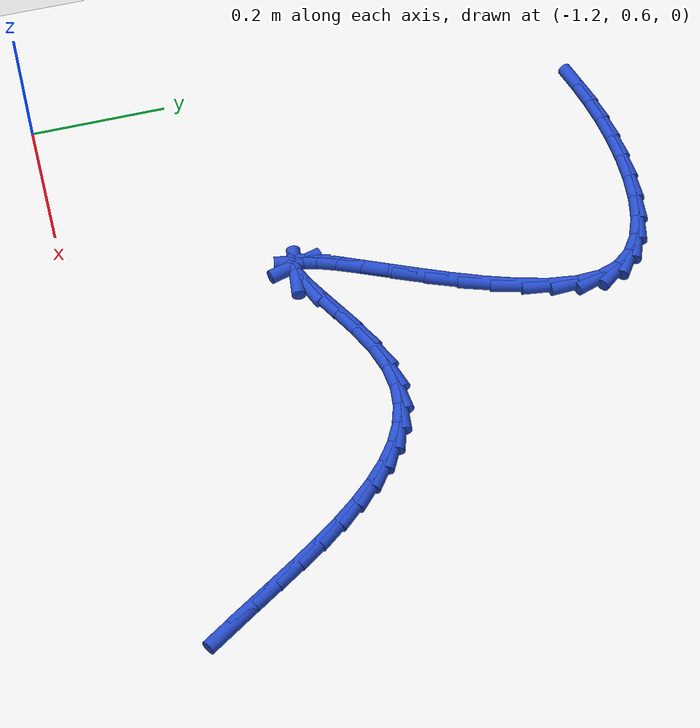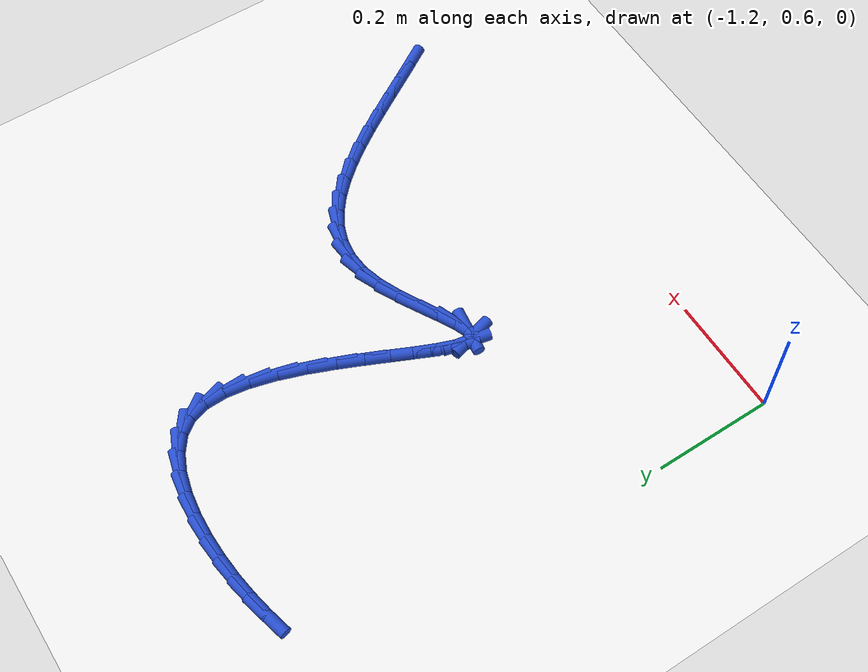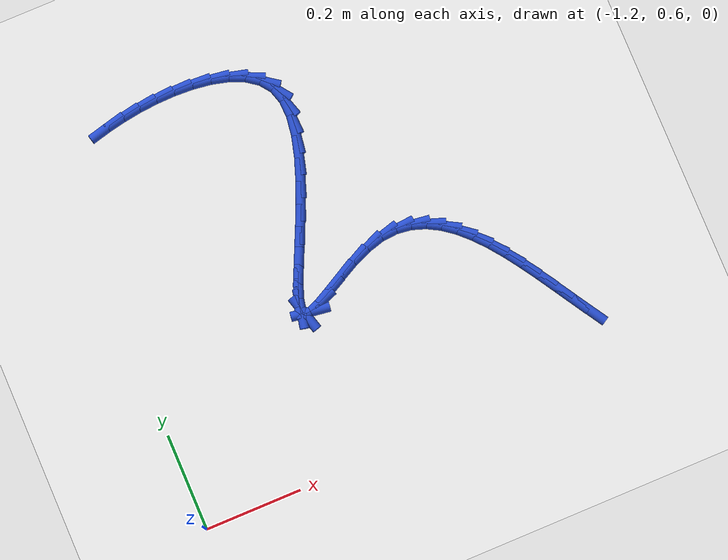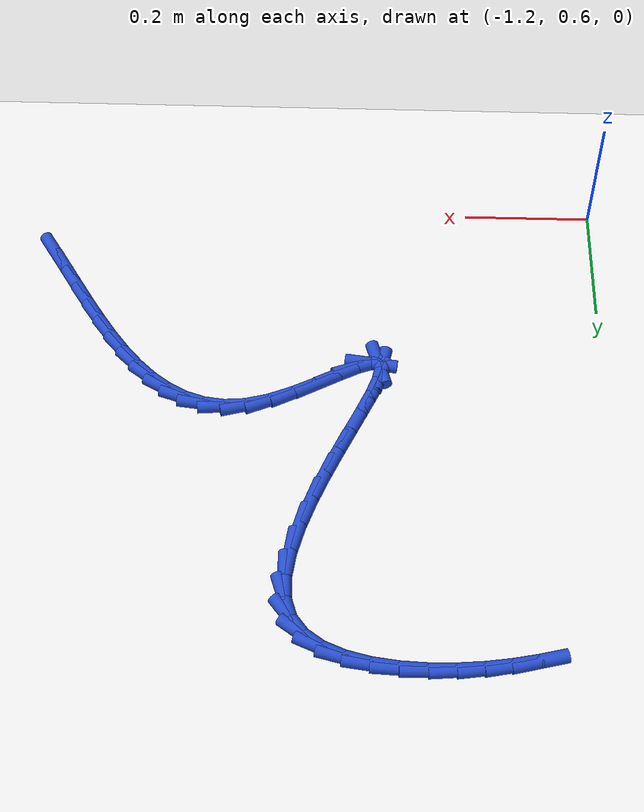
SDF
<sdf version="1.6">
 <world name="default">
  <model name="ground_plane">
   <static>1</static>
   <link name="link">
    <collision name="collision">
     <geometry><plane><normal>0 0 1</normal><size>100 100</size></plane></geometry>
     <surface><friction><ode><mu>100</mu><mu2>50</mu2></ode></friction></surface>
    </collision>
    <visual name="visual">
     <cast_shadows>0</cast_shadows>
     <geometry><plane><normal>0 0 1</normal><size>100 100</size></plane></geometry>
     <material>
      <script><uri>file://media/materials/scripts/gazebo.material</uri><name>Gazebo/WhiteGlow</name></script>
     </material>
    </visual>
   </link>
  </model>
  <model name="line">
   <link name="link_24">
    <pose>-0.3369132298268747 0.7074806537702544 0.01 0 1.57 -1.012945403709321</pose>
    <collision name="collision">
     <geometry><cylinder><radius>0.01</radius><length>0.08</length></cylinder></geometry>
    </collision>
    <visual name="visual">
     <material>
      <script><name>Gazebo/Blue</name><uri>file://media/materials/scripts/gazebo.material</uri></script>
     </material>
     <geometry><cylinder><radius>0.01</radius><length>0.08</length></cylinder></geometry>
    </visual>
   </link>
   <link name="link_25">
    <pose>-0.35791595093579703 0.7411410316948477 0.01 0 1.57 -1.020672715207863</pose>
    <collision name="collision">
     <geometry><cylinder><radius>0.01</radius><length>0.08</length></cylinder></geometry>
    </collision>
    <visual name="visual">
     <material>
      <script><name>Gazebo/Blue</name><uri>file://media/materials/scripts/gazebo.material</uri></script>
     </material>
     <geometry><cylinder><radius>0.01</radius><length>0.08</length></cylinder></geometry>
    </visual>
   </link>
   <link name="link_26">
    <pose>-0.3788608896694163 0.7752936196553027 0.01 0 1.57 -1.0159316533496228</pose>
    <collision name="collision">
     <geometry><cylinder><radius>0.01</radius><length>0.08</length></cylinder></geometry>
    </collision>
    <visual name="visual">
     <material>
      <script><name>Gazebo/Blue</name><uri>file://media/materials/scripts/gazebo.material</uri></script>
     </material>
     <geometry><cylinder><radius>0.01</radius><length>0.08</length></cylinder></geometry>
    </visual>
   </link>
   <link name="link_27">
    <pose>-0.39993773483118594 0.8092984812632591 0.01 0 1.57 -0.9985109300481555</pose>
    <collision name="collision">
     <geometry><cylinder><radius>0.01</radius><length>0.08</length></cylinder></geometry>
    </collision>
    <visual name="visual">
     <material>
      <script><name>Gazebo/Blue</name><uri>file://media/materials/scripts/gazebo.material</uri></script>
     </material>
     <geometry><cylinder><radius>0.01</radius><length>0.08</length></cylinder></geometry>
    </visual>
   </link>
   <link name="link_28">
    <pose>-0.42133617522455946 0.8425156801303565 0.01 0 1.57 -0.9673484333405514</pose>
    <collision name="collision">
     <geometry><cylinder><radius>0.01</radius><length>0.08</length></cylinder></geometry>
    </collision>
    <visual name="visual">
     <material>
      <script><name>Gazebo/Blue</name><uri>file://media/materials/scripts/gazebo.material</uri></script>
     </material>
     <geometry><cylinder><radius>0.01</radius><length>0.08</length></cylinder></geometry>
    </visual>
   </link>
   <link name="link_29">
    <pose>-0.4432458996529901 0.8743052798682337 0.01 0 1.57 -0.9204583813876139</pose>
    <collision name="collision">
     <geometry><cylinder><radius>0.01</radius><length>0.08</length></cylinder></geometry>
    </collision>
    <visual name="visual">
     <material>
      <script><name>Gazebo/Blue</name><uri>file://media/materials/scripts/gazebo.material</uri></script>
     </material>
     <geometry><cylinder><radius>0.01</radius><length>0.08</length></cylinder></geometry>
    </visual>
   </link>
   <link name="link_30">
    <pose>-0.4658565969199314 0.9040273440885304 0.01 0 1.57 -0.8548333704648474</pose>
    <collision name="collision">
     <geometry><cylinder><radius>0.01</radius><length>0.08</length></cylinder></geometry>
    </collision>
    <visual name="visual">
     <material>
      <script><name>Gazebo/Blue</name><uri>file://media/materials/scripts/gazebo.material</uri></script>
     </material>
     <geometry><cylinder><radius>0.01</radius><length>0.08</length></cylinder></geometry>
    </visual>
   </link>
   <link name="link_31">
    <pose>-0.48935795582883684 0.9310419364028861 0.01 0 1.57 -0.7664461051331181</pose>
    <collision name="collision">
     <geometry><cylinder><radius>0.01</radius><length>0.08</length></cylinder></geometry>
    </collision>
    <visual name="visual">
     <material>
      <script><name>Gazebo/Blue</name><uri>file://media/materials/scripts/gazebo.material</uri></script>
     </material>
     <geometry><cylinder><radius>0.01</radius><length>0.08</length></cylinder></geometry>
    </visual>
   </link>
   <link name="link_32">
    <pose>-0.5139396651831597 0.9547091204229403 0.01 0 1.57 -0.6506671082119945</pose>
    <collision name="collision">
     <geometry><cylinder><radius>0.01</radius><length>0.08</length></cylinder></geometry>
    </collision>
    <visual name="visual">
     <material>
      <script><name>Gazebo/Blue</name><uri>file://media/materials/scripts/gazebo.material</uri></script>
     </material>
     <geometry><cylinder><radius>0.01</radius><length>0.08</length></cylinder></geometry>
    </visual>
   </link>
   <link name="link_33">
    <pose>-0.5397914137863531 0.974388959760332 0.01 0 1.57 -0.5037211474533001</pose>
    <collision name="collision">
     <geometry><cylinder><radius>0.01</radius><length>0.08</length></cylinder></geometry>
    </collision>
    <visual name="visual">
     <material>
      <script><name>Gazebo/Blue</name><uri>file://media/materials/scripts/gazebo.material</uri></script>
     </material>
     <geometry><cylinder><radius>0.01</radius><length>0.08</length></cylinder></geometry>
    </visual>
   </link>
   <link name="link_34">
    <pose>-0.5671028904418711 0.9894415180267012 0.01 0 1.57 -0.3258380147962835</pose>
    <collision name="collision">
     <geometry><cylinder><radius>0.01</radius><length>0.08</length></cylinder></geometry>
    </collision>
    <visual name="visual">
     <material>
      <script><name>Gazebo/Blue</name><uri>file://media/materials/scripts/gazebo.material</uri></script>
     </material>
     <geometry><cylinder><radius>0.01</radius><length>0.08</length></cylinder></geometry>
    </visual>
   </link>
   <link name="link_35">
    <pose>-0.5960637839531668 0.999226858833687 0.01 0 1.57 -0.12525597777310601</pose>
    <collision name="collision">
     <geometry><cylinder><radius>0.01</radius><length>0.08</length></cylinder></geometry>
    </collision>
    <visual name="visual">
     <material>
      <script><name>Gazebo/Blue</name><uri>file://media/materials/scripts/gazebo.material</uri></script>
     </material>
     <geometry><cylinder><radius>0.01</radius><length>0.08</length></cylinder></geometry>
    </visual>
   </link>
   <link name="link_36">
    <pose>-0.6268637831236935 1.003105045792929 0.01 0 1.57 0.08111923479606854</pose>
    <collision name="collision">
     <geometry><cylinder><radius>0.01</radius><length>0.08</length></cylinder></geometry>
    </collision>
    <visual name="visual">
     <material>
      <script><name>Gazebo/Blue</name><uri>file://media/materials/scripts/gazebo.material</uri></script>
     </material>
     <geometry><cylinder><radius>0.01</radius><length>0.08</length></cylinder></geometry>
    </visual>
   </link>
   <link name="link_37">
    <pose>-0.6596925767569046 1.0004361425160662 0.01 0 1.57 0.27203568665329847</pose>
    <collision name="collision">
     <geometry><cylinder><radius>0.01</radius><length>0.08</length></cylinder></geometry>
    </collision>
    <visual name="visual">
     <material>
      <script><name>Gazebo/Blue</name><uri>file://media/materials/scripts/gazebo.material</uri></script>
     </material>
     <geometry><cylinder><radius>0.01</radius><length>0.08</length></cylinder></geometry>
    </visual>
   </link>
   <link name="link_38">
    <pose>-0.6946826463632483 0.9906756281500523 0.01 0 1.57 0.4054848090594809</pose>
    <collision name="collision">
     <geometry><cylinder><radius>0.01</radius><length>0.08</length></cylinder></geometry>
    </collision>
    <visual name="visual">
     <material>
      <script><name>Gazebo/Blue</name><uri>file://media/materials/scripts/gazebo.material</uri></script>
     </material>
     <geometry><cylinder><radius>0.01</radius><length>0.08</length></cylinder></geometry>
    </visual>
   </link>
   <link name="link_39">
    <pose>-0.7308428938630864 0.9751529902492242 0.01 0 1.57 0.4768607453517932</pose>
    <collision name="collision">
     <geometry><cylinder><radius>0.01</radius><length>0.08</length></cylinder></geometry>
    </collision>
    <visual name="visual">
     <material>
      <script><name>Gazebo/Blue</name><uri>file://media/materials/scripts/gazebo.material</uri></script>
     </material>
     <geometry><cylinder><radius>0.01</radius><length>0.08</length></cylinder></geometry>
    </visual>
   </link>
   <link name="link_40">
    <pose>-0.7661560553736643 0.956909249186225 0.01 0 1.57 0.5036686389816843</pose>
    <collision name="collision">
     <geometry><cylinder><radius>0.01</radius><length>0.08</length></cylinder></geometry>
    </collision>
    <visual name="visual">
     <material>
      <script><name>Gazebo/Blue</name><uri>file://media/materials/scripts/gazebo.material</uri></script>
     </material>
     <geometry><cylinder><radius>0.01</radius><length>0.08</length></cylinder></geometry>
    </visual>
   </link>
   <link name="link_41">
    <pose>-0.7985671927225647 0.939048261946423 0.01 0 1.57 0.4823308693171076</pose>
    <collision name="collision">
     <geometry><cylinder><radius>0.01</radius><length>0.08</length></cylinder></geometry>
    </collision>
    <visual name="visual">
     <material>
      <script><name>Gazebo/Blue</name><uri>file://media/materials/scripts/gazebo.material</uri></script>
     </material>
     <geometry><cylinder><radius>0.01</radius><length>0.08</length></cylinder></geometry>
    </visual>
   </link>
   <link name="link_42">
    <pose>-0.8260213677373713 0.9246738855151878 0.01 0 1.57 0.36382411308853496</pose>
    <collision name="collision">
     <geometry><cylinder><radius>0.01</radius><length>0.08</length></cylinder></geometry>
    </collision>
    <visual name="visual">
     <material>
      <script><name>Gazebo/Blue</name><uri>file://media/materials/scripts/gazebo.material</uri></script>
     </material>
     <geometry><cylinder><radius>0.01</radius><length>0.08</length></cylinder></geometry>
    </visual>
   </link>
   <link name="link_43">
    <pose>-0.8464636422456663 0.9168899768778885 0.01 0 1.57 -0.13613068136068118</pose>
    <collision name="collision">
     <geometry><cylinder><radius>0.01</radius><length>0.08</length></cylinder></geometry>
    </collision>
    <visual name="visual">
     <material>
      <script><name>Gazebo/Blue</name><uri>file://media/materials/scripts/gazebo.material</uri></script>
     </material>
     <geometry><cylinder><radius>0.01</radius><length>0.08</length></cylinder></geometry>
    </visual>
   </link>
   <link name="link_44">
    <pose>-0.8580917203479129 0.9184827662080651 0.01 0 1.57 -1.2954126902794283</pose>
    <collision name="collision">
     <geometry><cylinder><radius>0.01</radius><length>0.08</length></cylinder></geometry>
    </collision>
    <visual name="visual">
     <material>
      <script><name>Gazebo/Blue</name><uri>file://media/materials/scripts/gazebo.material</uri></script>
     </material>
     <geometry><cylinder><radius>0.01</radius><length>0.08</length></cylinder></geometry>
    </visual>
   </link>
   <link name="link_45">
    <pose>-0.8612248944012217 0.929571181385424 0.01 0 1.57 1.3680436797934128</pose>
    <collision name="collision">
     <geometry><cylinder><radius>0.01</radius><length>0.08</length></cylinder></geometry>
    </collision>
    <visual name="visual">
     <material>
      <script><name>Gazebo/Blue</name><uri>file://media/materials/scripts/gazebo.material</uri></script>
     </material>
     <geometry><cylinder><radius>0.01</radius><length>0.08</length></cylinder></geometry>
    </visual>
   </link>
   <link name="link_46">
    <pose>-0.857242913124703 0.9489409237891905 0.01 0 1.57 1.2186955344503692</pose>
    <collision name="collision">
     <geometry><cylinder><radius>0.01</radius><length>0.08</length></cylinder></geometry>
    </collision>
    <visual name="visual">
     <material>
      <script><name>Gazebo/Blue</name><uri>file://media/materials/scripts/gazebo.material</uri></script>
     </material>
     <geometry><cylinder><radius>0.01</radius><length>0.08</length></cylinder></geometry>
    </visual>
   </link>
   <link name="link_47">
    <pose>-0.8475333797222725 0.9753678199865128 0.01 0 1.57 1.160057830518008</pose>
    <collision name="collision">
     <geometry><cylinder><radius>0.01</radius><length>0.08</length></cylinder></geometry>
    </collision>
    <visual name="visual">
     <material>
      <script><name>Gazebo/Blue</name><uri>file://media/materials/scripts/gazebo.material</uri></script>
     </material>
     <geometry><cylinder><radius>0.01</radius><length>0.08</length></cylinder></geometry>
    </visual>
   </link>
   <link name="link_48">
    <pose>-0.8334838973978465 1.007627696544538 0.01 0 1.57 1.1387125407436758</pose>
    <collision name="collision">
     <geometry><cylinder><radius>0.01</radius><length>0.08</length></cylinder></geometry>
    </collision>
    <visual name="visual">
     <material>
      <script><name>Gazebo/Blue</name><uri>file://media/materials/scripts/gazebo.material</uri></script>
     </material>
     <geometry><cylinder><radius>0.01</radius><length>0.08</length></cylinder></geometry>
    </visual>
   </link>
   <link name="link_49">
    <pose>-0.8164820693553405 1.0444963800304152 0.01 0 1.57 1.1386319519810593</pose>
    <collision name="collision">
     <geometry><cylinder><radius>0.01</radius><length>0.08</length></cylinder></geometry>
    </collision>
    <visual name="visual">
     <material>
      <script><name>Gazebo/Blue</name><uri>file://media/materials/scripts/gazebo.material</uri></script>
     </material>
     <geometry><cylinder><radius>0.01</radius><length>0.08</length></cylinder></geometry>
    </visual>
   </link>
   <link name="link_50">
    <pose>-0.7979154987986706 1.0847496970112924 0.01 0 1.57 1.154677800600969</pose>
    <collision name="collision">
     <geometry><cylinder><radius>0.01</radius><length>0.08</length></cylinder></geometry>
    </collision>
    <visual name="visual">
     <material>
      <script><name>Gazebo/Blue</name><uri>file://media/materials/scripts/gazebo.material</uri></script>
     </material>
     <geometry><cylinder><radius>0.01</radius><length>0.08</length></cylinder></geometry>
    </visual>
   </link>
   <link name="link_51">
    <pose>-0.779171788931753 1.1271634740543175 0.01 0 1.57 1.1864534394016635</pose>
    <collision name="collision">
     <geometry><cylinder><radius>0.01</radius><length>0.08</length></cylinder></geometry>
    </collision>
    <visual name="visual">
     <material>
      <script><name>Gazebo/Blue</name><uri>file://media/materials/scripts/gazebo.material</uri></script>
     </material>
     <geometry><cylinder><radius>0.01</radius><length>0.08</length></cylinder></geometry>
    </visual>
   </link>
   <link name="link_52">
    <pose>-0.7616385429585033 1.170513537726638 0.01 0 1.57 1.2369499213273858</pose>
    <collision name="collision">
     <geometry><cylinder><radius>0.01</radius><length>0.08</length></cylinder></geometry>
    </collision>
    <visual name="visual">
     <material>
      <script><name>Gazebo/Blue</name><uri>file://media/materials/scripts/gazebo.material</uri></script>
     </material>
     <geometry><cylinder><radius>0.01</radius><length>0.08</length></cylinder></geometry>
    </visual>
   </link>
   <link name="link_53">
    <pose>-0.7467033640828377 1.2135757145954023 0.01 0 1.57 1.3131289967814044</pose>
    <collision name="collision">
     <geometry><cylinder><radius>0.01</radius><length>0.08</length></cylinder></geometry>
    </collision>
    <visual name="visual">
     <material>
      <script><name>Gazebo/Blue</name><uri>file://media/materials/scripts/gazebo.material</uri></script>
     </material>
     <geometry><cylinder><radius>0.01</radius><length>0.08</length></cylinder></geometry>
    </visual>
   </link>
   <link name="link_54">
    <pose>-0.7357538555086721 1.2551258312277587 0.01 0 1.57 1.428106688193839</pose>
    <collision name="collision">
     <geometry><cylinder><radius>0.01</radius><length>0.08</length></cylinder></geometry>
    </collision>
    <visual name="visual">
     <material>
      <script><name>Gazebo/Blue</name><uri>file://media/materials/scripts/gazebo.material</uri></script>
     </material>
     <geometry><cylinder><radius>0.01</radius><length>0.08</length></cylinder></geometry>
    </visual>
   </link>
   <link name="link_55">
    <pose>-0.7301776204399222 1.2939397141908553 0.01 0 1.57 -1.5368202100542399</pose>
    <collision name="collision">
     <geometry><cylinder><radius>0.01</radius><length>0.08</length></cylinder></geometry>
    </collision>
    <visual name="visual">
     <material>
      <script><name>Gazebo/Blue</name><uri>file://media/materials/scripts/gazebo.material</uri></script>
     </material>
     <geometry><cylinder><radius>0.01</radius><length>0.08</length></cylinder></geometry>
    </visual>
   </link>
   <link name="link_56">
    <pose>-0.7313622620805044 1.3287931900518395 0.01 0 1.57 -1.2662243334112948</pose>
    <collision name="collision">
     <geometry><cylinder><radius>0.01</radius><length>0.08</length></cylinder></geometry>
    </collision>
    <visual name="visual">
     <material>
      <script><name>Gazebo/Blue</name><uri>file://media/materials/scripts/gazebo.material</uri></script>
     </material>
     <geometry><cylinder><radius>0.01</radius><length>0.08</length></cylinder></geometry>
    </visual>
   </link>
   <link name="link_57">
    <pose>-0.7406898170902045 1.3584654346496763 0.01 0 1.57 -0.9237892005091377</pose>
    <collision name="collision">
     <geometry><cylinder><radius>0.01</radius><length>0.08</length></cylinder></geometry>
    </collision>
    <visual name="visual">
     <material>
      <script><name>Gazebo/Blue</name><uri>file://media/materials/scripts/gazebo.material</uri></script>
     </material>
     <geometry><cylinder><radius>0.01</radius><length>0.08</length></cylinder></geometry>
    </visual>
   </link>
   <link name="link_58">
    <pose>-0.7586677996104176 1.3822618055180071 0.01 0 1.57 -0.6264146758860445</pose>
    <collision name="collision">
     <geometry><cylinder><radius>0.01</radius><length>0.08</length></cylinder></geometry>
    </collision>
    <visual name="visual">
     <material>
      <script><name>Gazebo/Blue</name><uri>file://media/materials/scripts/gazebo.material</uri></script>
     </material>
     <geometry><cylinder><radius>0.01</radius><length>0.08</length></cylinder></geometry>
    </visual>
   </link>
   <link name="link_59">
    <pose>-0.7839847444725382 1.4005821015522353 0.01 0 1.57 -0.4060967333364357</pose>
    <collision name="collision">
     <geometry><cylinder><radius>0.01</radius><length>0.08</length></cylinder></geometry>
    </collision>
    <visual name="visual">
     <material>
      <script><name>Gazebo/Blue</name><uri>file://media/materials/scripts/gazebo.material</uri></script>
     </material>
     <geometry><cylinder><radius>0.01</radius><length>0.08</length></cylinder></geometry>
    </visual>
   </link>
   <link name="link_60">
    <pose>-0.8151023318736438 1.4139626152810536 0.01 0 1.57 -0.2484882658438684</pose>
    <collision name="collision">
     <geometry><cylinder><radius>0.01</radius><length>0.08</length></cylinder></geometry>
    </collision>
    <visual name="visual">
     <material>
      <script><name>Gazebo/Blue</name><uri>file://media/materials/scripts/gazebo.material</uri></script>
     </material>
     <geometry><cylinder><radius>0.01</radius><length>0.08</length></cylinder></geometry>
    </visual>
   </link>
   <link name="link_61">
    <pose>-0.8504822420108137 1.4229396392331568 0.01 0 1.57 -0.13330710241600108</pose>
    <collision name="collision">
     <geometry><cylinder><radius>0.01</radius><length>0.08</length></cylinder></geometry>
    </collision>
    <visual name="visual">
     <material>
      <script><name>Gazebo/Blue</name><uri>file://media/materials/scripts/gazebo.material</uri></script>
     </material>
     <geometry><cylinder><radius>0.01</radius><length>0.08</length></cylinder></geometry>
    </visual>
   </link>
   <link name="link_62">
    <pose>-0.8885861550811256 1.4280494659372367 0.01 0 1.57 -0.04524627482929764</pose>
    <collision name="collision">
     <geometry><cylinder><radius>0.01</radius><length>0.08</length></cylinder></geometry>
    </collision>
    <visual name="visual">
     <material>
      <script><name>Gazebo/Blue</name><uri>file://media/materials/scripts/gazebo.material</uri></script>
     </material>
     <geometry><cylinder><radius>0.01</radius><length>0.08</length></cylinder></geometry>
    </visual>
   </link>
   <link name="link_63">
    <pose>-0.9278757512816587 1.4298283879219882 0.01 0 1.57 0.026151628441838427</pose>
    <collision name="collision">
     <geometry><cylinder><radius>0.01</radius><length>0.08</length></cylinder></geometry>
    </collision>
    <visual name="visual">
     <material>
      <script><name>Gazebo/Blue</name><uri>file://media/materials/scripts/gazebo.material</uri></script>
     </material>
     <geometry><cylinder><radius>0.01</radius><length>0.08</length></cylinder></geometry>
    </visual>
   </link>
   <link name="link_64">
    <pose>-0.9668351853711411 1.4288093029467723 0.01 0 1.57 0.08942881015920927</pose>
    <collision name="collision">
     <geometry><cylinder><radius>0.01</radius><length>0.08</length></cylinder></geometry>
    </collision>
    <visual name="visual">
     <material>
      <script><name>Gazebo/Blue</name><uri>file://media/materials/scripts/gazebo.material</uri></script>
     </material>
     <geometry><cylinder><radius>0.01</radius><length>0.08</length></cylinder></geometry>
    </visual>
   </link>
   <link name="link_65">
    <pose>-1.0046604194305342 1.4254175906931563 0.01 0 1.57 0.14773920661736598</pose>
    <collision name="collision">
     <geometry><cylinder><radius>0.01</radius><length>0.08</length></cylinder></geometry>
    </collision>
    <visual name="visual">
     <material>
      <script><name>Gazebo/Blue</name><uri>file://media/materials/scripts/gazebo.material</uri></script>
     </material>
     <geometry><cylinder><radius>0.01</radius><length>0.08</length></cylinder></geometry>
    </visual>
   </link>
   <link name="link_66">
    <pose>-1.0413880064389314 1.4199516600814435 0.01 0 1.57 0.20024958839547014</pose>
    <collision name="collision">
     <geometry><cylinder><radius>0.01</radius><length>0.08</length></cylinder></geometry>
    </collision>
    <visual name="visual">
     <material>
      <script><name>Gazebo/Blue</name><uri>file://media/materials/scripts/gazebo.material</uri></script>
     </material>
     <geometry><cylinder><radius>0.01</radius><length>0.08</length></cylinder></geometry>
    </visual>
   </link>
   <link name="link_67">
    <pose>-1.0771029541486095 1.412702600966916 0.01 0 1.57 0.24617600146239157</pose>
    <collision name="collision">
     <geometry><cylinder><radius>0.01</radius><length>0.08</length></cylinder></geometry>
    </collision>
    <visual name="visual">
     <material>
      <script><name>Gazebo/Blue</name><uri>file://media/materials/scripts/gazebo.material</uri></script>
     </material>
     <geometry><cylinder><radius>0.01</radius><length>0.08</length></cylinder></geometry>
    </visual>
   </link>
  </model>
 </world>
</sdf>
